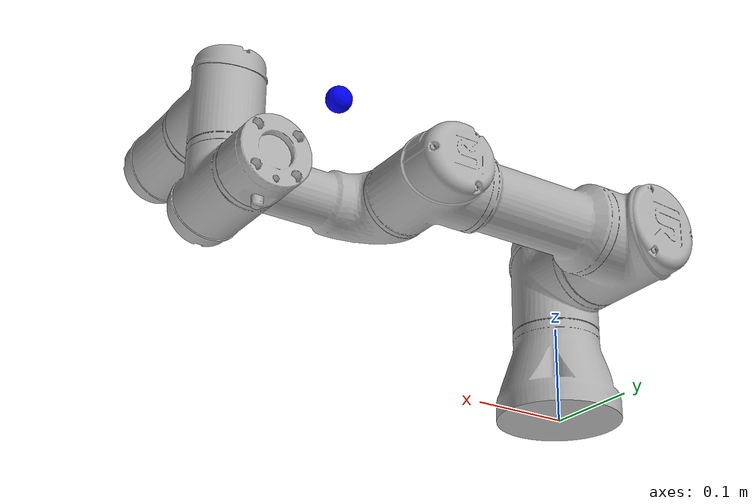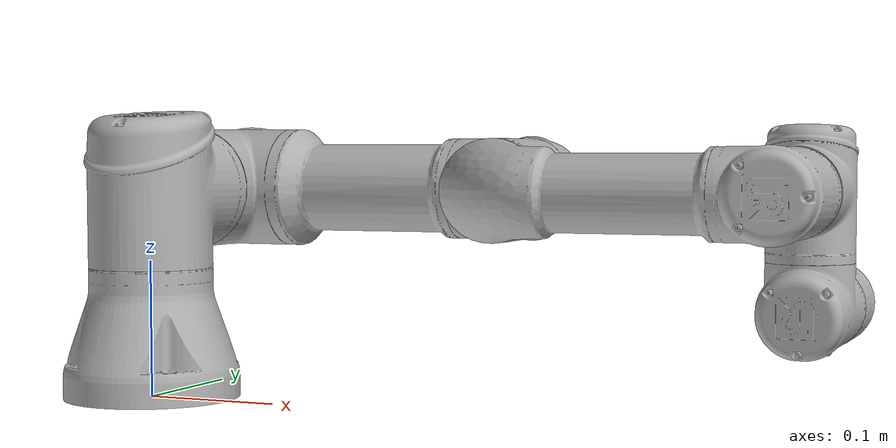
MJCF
<mujoco model="UR3e">
    <compiler angle="radian" />
    <size njmax="500" nconmax="100" />
    <asset>
        <mesh name="base" file="base.stl" />
        <mesh name="shoulder" file="shoulder.stl" />
        <mesh name="upperarm" file="upperarm.stl" />
        <mesh name="forearm" file="forearm.stl" />
        <mesh name="wrist1" file="wrist1.stl" />
        <mesh name="wrist2" file="wrist2.stl" />
        <mesh name="wrist3" file="wrist3.stl" />

    </asset>

        <actuator>
        <position ctrllimited="true" ctrlrange="-1 1" joint="joint_1" name="torq_1"/>
        <position ctrllimited="true" ctrlrange="-1 1" joint="joint_2" name="torq_2"/>
        <position ctrllimited="true" ctrlrange="-1 1" joint="joint_3" name="torq_3"/>
        <position ctrllimited="true" ctrlrange="-1 1" joint="joint_4" name="torq_4"/>
        <position ctrllimited="true" ctrlrange="-1 1" joint="joint_5" name="torq_5"/>
        <position ctrllimited="true" ctrlrange="-1 1" joint="joint_6" name="torq_6"/>
    </actuator>
    <worldbody>
        <geom quat="-1 0 0 0" type="mesh" rgba="0.7 0.7 0.7 1" mesh="base" />
        <body name="shoulder_link" pos="0 0 0.15185" quat="0 0 0 1">
            <inertial pos="0 0 0" mass="2" diaginertia="0.00809316 0.00809316 0.005625" />
            <joint name="joint_1" pos="0 0 0" axis="0 0 1" limited="true" range="-6.28319 6.28319" />
            <geom quat="0 0 0 1" type="mesh" rgba="0.7 0.7 0.7 1" mesh="shoulder" />
            <body name="upper_arm_link" pos="0 0 0" quat="0.707107 0.707107 0 0">
                <inertial pos="-0.121825 0 0.12" quat="0.707107 0 0.707107 0" mass="3.42" diaginertia="0.0217285 0.0217285 0.00961875" />
                <joint name="joint_2" pos="0 0 0" axis="0 0 1" limited="true" range="-6.28319 6.28319" />
                <geom pos="0 0 0.12" quat="0.5 0.5 -0.5 -0.5" type="mesh" rgba="0.7 0.7 0.7 1" mesh="upperarm" />
                <body name="forearm_link" pos="-0.24355 0 0">
                    <inertial pos="-0.1066 0 0.027" quat="0.707107 0 0.707107 0" mass="1.26" diaginertia="0.00654457 0.00654457 0.00354375" />
                    <joint name="joint_3" pos="0 0 0" axis="0 0 1" limited="true" range="-3.14159 3.14159" />
                    <geom pos="0 0 0.027" quat="0.5 0.5 -0.5 -0.5" type="mesh" rgba="0.7 0.7 0.7 1" mesh="forearm" />
                    <body name="wrist_1_link" pos="-0.2132 0 0.13105">
                        <inertial pos="0 0 0" quat="0.5 0.5 -0.5 0.5" mass="0.8" diaginertia="0.00225 0.002085 0.002085" />
                        <joint name="joint_4" pos="0 0 0" axis="0 0 1" limited="true" range="-6.28319 6.28319" />
                        <geom pos="0 0 -0.104" quat="0.707107 0.707107 0 0" type="mesh" rgba="0.7 0.7 0.7 1" mesh="wrist1" />
                        <body name="wrist_2_link" pos="0 -0.08535 -1.75056e-11" quat="0.707107 0.707107 0 0">
                            <inertial pos="0 0 0" quat="0.5 0.5 -0.5 0.5" mass="0.8" diaginertia="0.00225 0.002085 0.002085" />
                            <joint name="joint_5" pos="0 0 0" axis="0 0 1" limited="true" range="-6.28319 6.28319" />
                            <geom pos="0 0 -0.08535" type="mesh" rgba="0.7 0.7 0.7 1" mesh="wrist2" />
                            <body name="wrist_3_link" pos="0 0.0921 -1.889e-11" quat="0.707107 -0.707107 0 0">
                                <inertial pos="0 0 -0.02" quat="0.5 0.5 -0.5 0.5" mass="0.35" diaginertia="0.0001792 0.000136267 0.000136267" />
                                <joint name="joint_6" pos="0 0 0" axis="0 0 1" limited="true" range="-6.28319 6.28319" />
                                <geom pos="0 0 -0.0921" quat="0.707107 0.707107 0 0" type="mesh" rgba="0.7 0.7 0.7 1" mesh="wrist3" />

                            <body name="right_hand" pos="0 0 0.09" quat="0 0 0 1" >
                                        <!-- This sites were added for visualization. They are all standardized between models-->
                                        <!-- Position mimics the gripper attachment point (right_hand) -->
                                        <!--  Y-axis should be perpendicular to grasping motion, and Z-axis should point out of the robot eef -->
                                        <site name="ee" pos="0 0 0" size="0.01 0.01 0.01" rgba="0 0 1 1" type="sphere" group="1"/>
                                        <site name="ee_x" pos="0 0 0" size="0.005 .1"  quat="0.707105 0.707108 0 0 " rgba="1 0 0 0" type="cylinder" group="1"/>
                                        <site name="ee_z" pos="0 0 0" size="0.005 .1" quat="0.707105 0 0 0.707108" rgba="0 0 1 0" type="cylinder" group="1"/>
                                        <site name="ee_y" pos="0 0 0" size="0.005 .1" quat="0.707105 0 0.707108 0 " rgba="0 1 0 0" type="cylinder" group="1"/>
                                        <!-- This camera points out from the eef. -->
                                        <camera mode="fixed" name="eye_in_hand" pos="0.05 0 0" quat="0 0.707108 0.707108 0" fovy="75"/>
                                        <!-- To add gripper -->
                                    </body>

                            </body>
                        </body>
                    </body>
                </body>
            </body>
        </body>
    </worldbody>
</mujoco>
